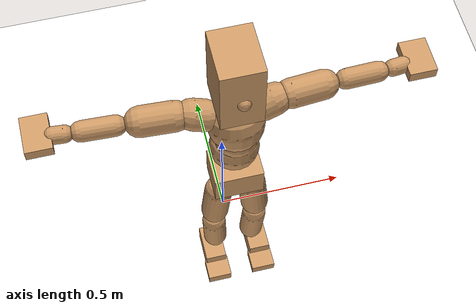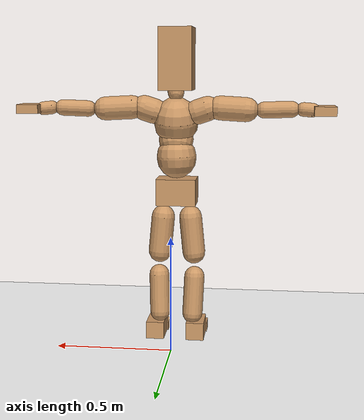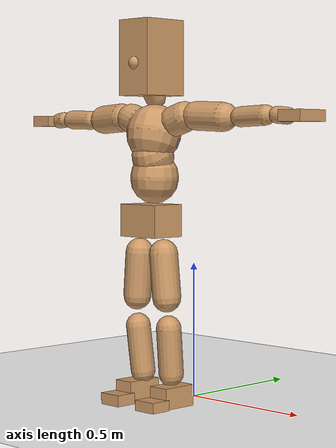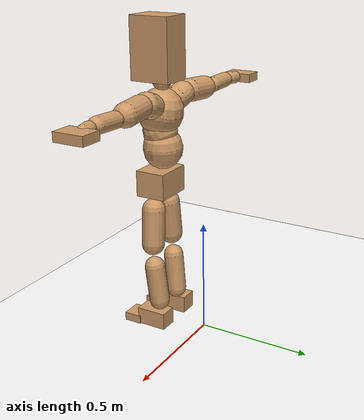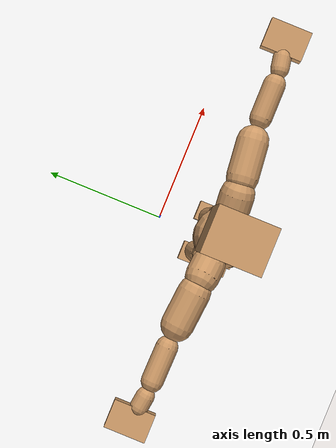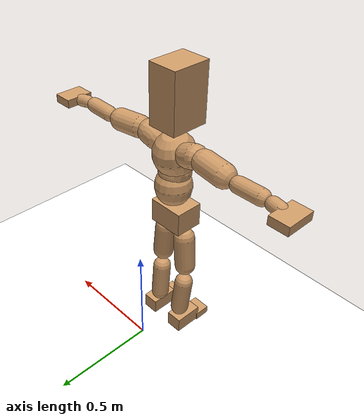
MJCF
<mujoco model="humanoid">
  <option integrator="implicitfast" />

  <visual>
    <global offwidth="1280" offheight="960" />
    <headlight active="1" ambient="0.34 0.34 0.34" diffuse="0.5 0.5 0.5" />
  </visual>

  <default>
    <joint damping="2" stiffness="2" armature="0.01" limited="true" solimplimit="0 .99 .01" />
    <geom condim="1" friction="0.7 0.005 0.0001" solimp=".99 .99 .003" solref="0.015 1" margin="0.001" rgba="0.8 0.6 .4 1" />
    <default class="smplcontact">
      <geom condim="3" friction="1. 0.005 0.0001" solref="0.015 1" solimp="0.98 0.98 0.001" priority="1" />
    </default>
    <default class="stiff_medium">
      <joint stiffness="10" />
    </default>
    <default class="stiff_medium_higher">
      <joint stiffness="50" />
    </default>
    <default class="stiff_high">
      <joint stiffness="100" />
    </default>
  </default>

  <asset>
    <texture type="skybox" builtin="gradient" rgb1="0.99 0.99 0.99" rgb2="0.608 0.828 0.892" width="100" />
    <texture builtin="flat" height="1278" mark="cross" markrgb="1 1 1" name="texgeom" random="0.01" rgb1="0.8 0.6 0.4" rgb2="0.8 0.6 0.4" type="cube" width="127" />
    <texture name="texplane" type="2d" builtin="checker" markrgb="1 1 1" rgb1="0.756 0.772 0.76" rgb2="0.6 0.6 0.6" width="100" height="100" />
    <material name="MatPlane" reflectance="0.5" texture="texplane" texrepeat="1 1" texuniform="true" />
    <material name="geom" texture="texgeom" texuniform="true" />
  </asset>

  <worldbody>
    <light name="tracking_light" pos="0 0 7" dir="0 0 -1" directional="true" cutoff="100" exponent="1" diffuse="1 1 1" specular="0.1 0.1 0.1" mode="trackcom" />
    <camera name="back" pos="0 3 2.4" xyaxes="-1 0 0 0 -1 2" mode="trackcom" />
    <camera name="side" pos="-3 0 2.4" xyaxes="0 -1 0 1 0 2" mode="trackcom" />
    <camera name="front_side" pos="-2.8 -2.8 0.8" xyaxes="0.5 -0.5 0 0.1 0.1 1" mode="trackcom" />
    <geom condim="3" name="floor" pos="0 0 0" rgba="1 1 1 1" size="100 100 .2" type="plane" material="MatPlane" />
    <body name="Pelvis" pos="-0.0018 -0.2233 0.676753" euler="90 0 0">
      <site name="Pelvis" size="0.01" />
      <freejoint name="Pelvis" />
      <geom type="box" pos="0 -0.00975135 -0.0045089" size="0.0876366 0.0581858 0.0680434" quat="1.0000 0.0000 0.0000 0.0000" density="3165.830099" name="Pelvis" />
      <body name="L_Hip" pos="0.0569761 -0.073659 -0.00557464">
        <joint name="L_Hip_x" type="hinge" pos="0 0 0" axis="1 0 0" stiffness="10" range="-160.0 22.92" class="stiff_medium" damping="15" />
        <joint name="L_Hip_y" type="hinge" pos="0 0 0" axis="0 1 0" stiffness="10" range="-70.0 70.0" class="stiff_medium" damping="10" />
        <joint name="L_Hip_z" type="hinge" pos="0 0 0" axis="0 0 1" stiffness="10" range="-28.65 90.0" class="stiff_medium" damping="10" />
        <geom type="capsule" density="2040.816327" fromto="0.00485388 -0.0526544 -0.000631959 0.0192463 -0.210761 -0.00252755" size="0.0513525" name="L_Hip" />
        <body name="L_Knee" pos="0.0241002 -0.263415 -0.00315951">
          <joint name="L_Knee_x" type="hinge" pos="0 0 0" axis="1 0 0" range="-5.16 171.89" damping="8" />
          <joint name="L_Knee_y" type="hinge" pos="0 0 0" axis="0 1 0" range="-4.58 6.88" damping="8" />
          <joint name="L_Knee_z" type="hinge" pos="0 0 0" axis="0 0 1" range="-6.88 4.58" damping="8" />
          <geom type="capsule" density="1234.567901" fromto="-0.00189136 -0.0558859 -0.0060996 -0.00764834 -0.22354 -0.0245641" size="0.044903" name="L_Knee" />
          <body name="L_Ankle" pos="-0.00953971 -0.279426 -0.0306637">
            <joint name="L_Ankle_x" type="hinge" pos="0 0 0" axis="1 0 0" range="-45.84 45.84" class="stiff_medium" damping="6" />
            <joint name="L_Ankle_y" type="hinge" pos="0 0 0" axis="0 1 0" range="-74.48 22.92" class="stiff_medium" damping="3" />
            <joint name="L_Ankle_z" type="hinge" pos="0 0 0" axis="0 0 1" range="-4.58 4.58" class="stiff_medium" damping="6" />
            <geom type="box" pos="0.0191013 -0.0195932 0.0196002" size="0.0395963 0.0380387 0.0688438" quat="1.0000 0.0000 0.0000 0.0000" density="449.071558" name="L_Ankle" class="smplcontact" />
            <body name="L_Toe" pos="0.0216427 -0.0457448 0.0966242">
              <joint name="L_Toe_x" type="hinge" pos="0 0 0" axis="1 0 0" range="-91.67 22.92" />
              <joint name="L_Toe_y" type="hinge" pos="0 0 0" axis="0 1 0" range="-4.58 4.58" />
              <joint name="L_Toe_z" type="hinge" pos="0 0 0" axis="0 0 1" range="-4.58 4.58" />
              <geom type="box" pos="-0.00282 0.00517 0.0200862" size="0.044932 0.0188 0.0401724" quat="1.0000 0.0000 0.0000 0.0000" density="423.206892" name="L_Toe" class="smplcontact" />
            </body>
          </body>
        </body>
      </body>
      <body name="R_Hip" pos="-0.0555005 -0.0729337 -0.00352514">
        <joint name="R_Hip_x" type="hinge" pos="0 0 0" axis="1 0 0" stiffness="10" range="-160.0 22.92" class="stiff_medium" damping="15" />
        <joint name="R_Hip_y" type="hinge" pos="0 0 0" axis="0 1 0" stiffness="10" range="-70.0 70.0" class="stiff_medium" damping="10" />
        <joint name="R_Hip_z" type="hinge" pos="0 0 0" axis="0 0 1" stiffness="10" range="-90.0 28.65" class="stiff_medium" damping="10" />
        <geom type="capsule" density="2040.816327" fromto="-0.00541515 -0.0537074 -0.00126824 -0.0214926 -0.214903 -0.00498921" size="0.050601" name="R_Hip" />
        <body name="R_Knee" pos="-0.0269077 -0.26861 -0.00625745">
          <joint name="R_Knee_x" type="hinge" pos="0 0 0" axis="1 0 0" range="-5.16 171.89" damping="8" />
          <joint name="R_Knee_y" type="hinge" pos="0 0 0" axis="0 1 0" range="-6.88 4.58" damping="8" />
          <joint name="R_Knee_z" type="hinge" pos="0 0 0" axis="0 0 1" range="-4.58 6.88" damping="8" />
          <geom type="capsule" density="1234.567901" fromto="0.00225494 -0.0559539 -0.00597555 0.0088544 -0.223749 -0.0237379" size="0.044903" name="R_Knee" />
          <body name="R_Ankle" pos="0.0111093 -0.279703 -0.0297135">
            <joint name="R_Ankle_x" type="hinge" pos="0 0 0" axis="1 0 0" range="-45.84 45.84" class="stiff_medium" damping="6" />
            <joint name="R_Ankle_y" type="hinge" pos="0 0 0" axis="0 1 0" range="-22.92 74.48" class="stiff_medium" damping="3" />
            <joint name="R_Ankle_z" type="hinge" pos="0 0 0" axis="0 0 1" range="-4.58 4.58" class="stiff_medium" damping="6" />
            <geom type="box" pos="-0.0173798 -0.0142645 0.0207341" size="0.0395963 0.0391864 0.0700586" quat="1.0000 0.0000 0.0000 0.0000" density="434.700981" name="R_Ankle" class="smplcontact" />
            <body name="R_Toe" pos="-0.0208229 -0.0394324 0.0998639">
              <joint name="R_Toe_x" type="hinge" pos="0 0 0" axis="1 0 0" range="-91.67 22.92" />
              <joint name="R_Toe_y" type="hinge" pos="0 0 0" axis="0 1 0" range="-4.58 4.58" />
              <joint name="R_Toe_z" type="hinge" pos="0 0 0" axis="0 0 1" range="-4.58 4.58" />
              <geom type="box" pos="0.003948 0.00423 0.0183853" size="0.045026 0.020304 0.0399294" quat="1.0000 0.0000 0.0000 0.0000" density="407.384095" name="R_Toe" class="smplcontact" />
            </body>
          </body>
        </body>
      </body>
      <body name="Torso" pos="-0.0020495 0.0878428 -0.0218887">
        <joint name="Torso_x" type="hinge" pos="0 0 0" axis="1 0 0" range="-25.78 57.3" class="stiff_medium" damping="15" />
        <joint name="Torso_y" type="hinge" pos="0 0 0" axis="0 1 0" range="-57.3 57.3" class="stiff_high" damping="20" />
        <joint name="Torso_z" type="hinge" pos="0 0 0" axis="0 0 1" range="-34.38 34.38" class="stiff_high" damping="20" />
        <geom type="capsule" density="2040.816327" fromto="0.00211351 0.0494937 0.000422701 0.00252055 0.0604839 0.00050411" size="0.086897" name="Torso" />
        <body name="Spine" pos="0.00463289 0.110059 0.000926578">
          <joint name="Spine_x" type="hinge" pos="0 0 0" axis="1 0 0" stiffness="10" range="-25.78 57.3" class="stiff_medium" damping="15" />
          <joint name="Spine_y" type="hinge" pos="0 0 0" axis="0 1 0" stiffness="10" range="-57.3 57.3" class="stiff_high" damping="8" />
          <joint name="Spine_z" type="hinge" pos="0 0 0" axis="0 0 1" stiffness="20" range="-34.38 34.38" class="stiff_high" damping="12" />
          <geom type="capsule" density="2040.816327" fromto="0.000619414 0.0193959 0.00923676 0.000700823 0.0237106 0.0113534" size="0.076255" name="Spine" />
          <body name="Chest" pos="0.00132024 0.0431065 0.0205902">
            <joint name="Chest_x" type="hinge" pos="0 0 0" axis="1 0 0" stiffness="10" range="-25.78 57.3" class="stiff_medium" damping="15" />
            <joint name="Chest_y" type="hinge" pos="0 0 0" axis="0 1 0" stiffness="10" range="-57.3 57.3" class="stiff_high" damping="8" />
            <joint name="Chest_z" type="hinge" pos="0 0 0" axis="0 0 1" stiffness="20" range="-34.38 34.38" class="stiff_high" damping="12" />
            <geom type="capsule" density="2040.816327" fromto="-0.000807147 0.0555331 -0.0140347 -0.000888556 0.0678259 -0.0172097" size="0.098196" name="Chest" />
            <body name="Neck" pos="-0.00251225 0.174628 -0.0330039">
              <joint name="Neck_x" type="hinge" pos="0 0 0" axis="1 0 0" range="-28.65 57.3" class="stiff_medium_higher" damping="10" />
              <joint name="Neck_y" type="hinge" pos="0 0 0" axis="0 1 0" range="-40.11 40.11" class="stiff_medium_higher" damping="10" />
              <joint name="Neck_z" type="hinge" pos="0 0 0" axis="0 0 1" range="-40.11 40.11" class="stiff_medium_higher" damping="10" />
              <geom type="capsule" density="1000" fromto="0.000809445 0.0105288 0.00834255 0.00332022 0.042116 0.0332883" size="0.035922" name="Neck" />
              <body name="Head" pos="0.0042121 0.0526454 0.0415489">
                <joint name="Head_x" type="hinge" pos="0 0 0" axis="1 0 0" range="-28.65 57.3" class="stiff_medium_higher" damping="2" />
                <joint name="Head_y" type="hinge" pos="0 0 0" axis="0 1 0" range="-40.11 40.11" class="stiff_medium_higher" damping="2" />
                <joint name="Head_z" type="hinge" pos="0 0 0" axis="0 0 1" range="-40.11 40.11" class="stiff_medium_higher" damping="2" />
                <geom type="box" pos="-0.00497868 0.102071 -0.0137506" size="0.0718352 0.134463 0.0900904" quat="1.0000 0.0000 0.0000 0.0000" density="1018.069894" name="Head" />
                <geom type="capsule" name="nose" size="0.023708 0.011854" pos="0 0.0815635 0.05927" quat="1 0 0 0" mass="0" contype="0" conaffinity="0" />
              </body>
            </body>
            <body name="L_Thorax" pos="0.0773579 0.0990496 -0.0281966">
              <joint name="L_Thorax_x" type="hinge" pos="0 0 0" axis="1 0 0" range="-10.89 4.58" class="stiff_medium_higher" damping="20" />
              <joint name="L_Thorax_y" type="hinge" pos="0 0 0" axis="0 1 0" range="-28.65 17.19" class="stiff_medium_higher" damping="20" />
              <joint name="L_Thorax_z" type="hinge" pos="0 0 0" axis="0 0 1" range="-31.51 40.11" class="stiff_medium_higher" damping="20" />
              <geom type="capsule" density="1000" fromto="0.0145175 0.00486574 -0.00144437 0.0580721 0.0194637 -0.0056722" size="0.0549655" name="L_Thorax" />
              <body name="L_Shoulder" pos="0.0725896 0.0243295 -0.00711657">
                <joint name="L_Shoulder_x" type="hinge" pos="0 0 0" axis="1 0 0" range="-97.4 97.4" class="stiff_medium" damping="6" />
                <joint name="L_Shoulder_y" type="hinge" pos="0 0 0" axis="0 1 0" range="-108.86 80.21" class="stiff_medium" damping="6" />
                <joint name="L_Shoulder_z" type="hinge" pos="0 0 0" axis="0 0 1" range="-97.4 85.94" class="stiff_medium" damping="6" />
                <geom type="capsule" density="1000" fromto="0.038737 -0.00195722 -0.00410594 0.155025 -0.00762982 -0.0164215" size="0.051183" name="L_Shoulder" />
                <body name="L_Elbow" pos="0.193762 -0.00958704 -0.0205274">
                  <joint name="L_Elbow_x" type="hinge" pos="0 0 0" axis="1 0 0" range="-17.19 4.58" damping="5" />
                  <joint name="L_Elbow_y" type="hinge" pos="0 0 0" axis="0 1 0" range="-180.0 17.19" damping="5" />
                  <joint name="L_Elbow_z" type="hinge" pos="0 0 0" axis="0 0 1" range="-100.84 4.58" damping="5" />
                  <geom type="capsule" density="1000" fromto="0.0371705 0.0013438 -0.000145363 0.148831 0.00537433 -0.000667839" size="0.0350325" name="L_Elbow" />
                  <body name="L_Wrist" pos="0.186002 0.00671812 -0.000899701">
                    <joint name="L_Wrist_x" type="hinge" pos="0 0 0" axis="1 0 0" range="-180.0 22.92" />
                    <joint name="L_Wrist_y" type="hinge" pos="0 0 0" axis="0 1 0" range="-17.19 17.19" />
                    <joint name="L_Wrist_z" type="hinge" pos="0 0 0" axis="0 0 1" range="-22.92 22.92" />
                    <geom type="capsule" density="1000" fromto="0.01254 -0.00118866 -0.00223928 0.0501583 -0.004846 -0.00895683" size="0.029097" name="L_Wrist" class="smplcontact" />
                    <body name="L_Hand" pos="0.0626995 -0.00612629 -0.0111048">
                      <joint name="L_Hand_x" type="hinge" pos="0 0 0" axis="1 0 0" range="-17.19 17.19" />
                      <joint name="L_Hand_y" type="hinge" pos="0 0 0" axis="0 1 0" range="-51.57 51.57" />
                      <joint name="L_Hand_z" type="hinge" pos="0 0 0" axis="0 0 1" range="-91.67 91.67" />
                      <geom type="box" pos="0.0397307 0.00123 -0.007134" size="0.047145 0.019434 0.066174" quat="1.0000 0.0000 0.0000 0.0000" density="400.552564" name="L_Hand" class="smplcontact" />
                    </body>
                  </body>
                </body>
              </body>
            </body>
            <body name="R_Thorax" pos="-0.0800308 0.0963125 -0.0326336">
              <joint name="R_Thorax_x" type="hinge" pos="0 0 0" axis="1 0 0" range="-10.89 4.58" class="stiff_medium_higher" damping="20" />
              <joint name="R_Thorax_y" type="hinge" pos="0 0 0" axis="0 1 0" range="-17.19 28.65" class="stiff_medium_higher" damping="20" />
              <joint name="R_Thorax_z" type="hinge" pos="0 0 0" axis="0 0 1" range="-40.11 31.51" class="stiff_medium_higher" damping="20" />
              <geom type="capsule" density="1000" fromto="-0.0153166 0.00518532 -0.00142736 -0.0612644 0.0207405 -0.00581473" size="0.0539105" name="R_Thorax" />
              <body name="R_Shoulder" pos="-0.0765733 0.0260287 -0.00724135">
                <joint name="R_Shoulder_x" type="hinge" pos="0 0 0" axis="1 0 0" range="-97.4 97.4" class="stiff_medium" damping="6" />
                <joint name="R_Shoulder_y" type="hinge" pos="0 0 0" axis="0 1 0" range="-80.21 108.86" class="stiff_medium" damping="6" />
                <joint name="R_Shoulder_z" type="hinge" pos="0 0 0" axis="0 0 1" range="-85.94 97.4" class="stiff_medium" damping="6" />
                <geom type="capsule" density="1000" fromto="-0.037841 -0.00202417 -0.00321888 -0.151517 -0.00799533 -0.0127727" size="0.052569" name="R_Shoulder" />
                <body name="R_Elbow" pos="-0.189359 -0.00992057 -0.0159917">
                  <joint name="R_Elbow_x" type="hinge" pos="0 0 0" axis="1 0 0" range="-17.19 4.58" damping="5" />
                  <joint name="R_Elbow_y" type="hinge" pos="0 0 0" axis="0 1 0" range="-17.19 180.0" damping="5" />
                  <joint name="R_Elbow_z" type="hinge" pos="0 0 0" axis="0 0 1" range="-4.58 100.84" damping="5" />
                  <geom type="capsule" density="1000" fromto="-0.0381406 0.00120189 -0.000820859 -0.152414 0.00463531 -0.00328396" size="0.035292" name="R_Elbow" />
                  <body name="R_Wrist" pos="-0.190554 0.0058372 -0.00419132">
                    <joint name="R_Wrist_x" type="hinge" pos="0 0 0" axis="1 0 0" range="-180.0 22.92" />
                    <joint name="R_Wrist_y" type="hinge" pos="0 0 0" axis="0 1 0" range="-17.19 17.19" />
                    <joint name="R_Wrist_z" type="hinge" pos="0 0 0" axis="0 0 1" range="-22.92 22.92" />
                    <geom type="capsule" density="1000" fromto="-0.0126137 -0.000890435 -0.00157369 -0.0505306 -0.0036521 -0.00620134" size="0.029829" name="R_Wrist" class="smplcontact" />
                    <body name="R_Hand" pos="-0.0631463 -0.00454268 -0.00768377">
                      <joint name="R_Hand_x" type="hinge" pos="0 0 0" axis="1 0 0" range="-17.19 17.19" />
                      <joint name="R_Hand_y" type="hinge" pos="0 0 0" axis="0 1 0" range="-51.57 51.57" />
                      <joint name="R_Hand_z" type="hinge" pos="0 0 0" axis="0 0 1" range="-91.67 91.67" />
                      <geom type="box" pos="-0.0372324 -0.001107 -0.009717" size="0.0458555 0.020172 0.067158" quat="1.0000 0.0000 0.0000 0.0000" density="403.679611" name="R_Hand" class="smplcontact" />
                    </body>
                  </body>
                </body>
              </body>
            </body>
          </body>
        </body>
      </body>
    </body>
  </worldbody>
  <actuator>
    <general name="L_Hip_x" joint="L_Hip_x" biastype="affine" gainprm="287.33006409732246" biasprm="-215.3247604770444 -180 -2.0" ctrllimited="true" ctrlrange="-1 1" forcerange="-360 360" />
    <general name="L_Hip_y" joint="L_Hip_y" biastype="affine" gainprm="219.9114857512855" biasprm="0.0 -180 -2.0" ctrllimited="true" ctrlrange="-1 1" forcerange="-360 360" />
    <general name="L_Hip_z" joint="L_Hip_z" biastype="affine" gainprm="186.3749841742145" biasprm="96.3683546488669 -180 -2.0" ctrllimited="true" ctrlrange="-1 1" forcerange="-360 360" />
    <general name="L_Knee_x" joint="L_Knee_x" biastype="affine" gainprm="278.10948965903646" biasprm="261.8988715665131 -180 -2.0" ctrllimited="true" ctrlrange="-1 1" forcerange="-360 360" />
    <general name="L_Knee_y" joint="L_Knee_y" biastype="affine" gainprm="18.001325905069514" biasprm="3.612831551628262 -180 -2.0" ctrllimited="true" ctrlrange="-1 1" forcerange="-360 360" />
    <general name="L_Knee_z" joint="L_Knee_z" biastype="affine" gainprm="18.001325905069514" biasprm="-3.612831551628262 -180 -2.0" ctrllimited="true" ctrlrange="-1 1" forcerange="-360 360" />
    <general name="L_Ankle_x" joint="L_Ankle_x" biastype="affine" gainprm="72.00530362027807" biasprm="0.0 -90 -2.0" ctrllimited="true" ctrlrange="-1 1" forcerange="-180 180" />
    <general name="L_Ankle_y" joint="L_Ankle_y" biastype="affine" gainprm="76.49778111491148" biasprm="-40.49512930477244 -90 -2.0" ctrllimited="true" ctrlrange="-1 1" forcerange="-180 180" />
    <general name="L_Ankle_z" joint="L_Ankle_z" biastype="affine" gainprm="7.1942471767206255" biasprm="0.0 -90 -2.0" ctrllimited="true" ctrlrange="-1 1" forcerange="-180 180" />
    <general name="L_Toe_x" joint="L_Toe_x" biastype="affine" gainprm="71.99902043497087" biasprm="-43.19689898685965 -72 -0.8" ctrllimited="true" ctrlrange="-1 1" forcerange="-144 144" />
    <general name="L_Toe_y" joint="L_Toe_y" biastype="affine" gainprm="5.755397741376501" biasprm="0.0 -72 -0.8" ctrllimited="true" ctrlrange="-1 1" forcerange="-144 144" />
    <general name="L_Toe_z" joint="L_Toe_z" biastype="affine" gainprm="5.755397741376501" biasprm="0.0 -72 -0.8" ctrllimited="true" ctrlrange="-1 1" forcerange="-144 144" />
    <general name="R_Hip_x" joint="R_Hip_x" biastype="affine" gainprm="287.33006409732246" biasprm="-215.3247604770444 -180 -2.0" ctrllimited="true" ctrlrange="-1 1" forcerange="-360 360" />
    <general name="R_Hip_y" joint="R_Hip_y" biastype="affine" gainprm="219.9114857512855" biasprm="0.0 -180 -2.0" ctrllimited="true" ctrlrange="-1 1" forcerange="-360 360" />
    <general name="R_Hip_z" joint="R_Hip_z" biastype="affine" gainprm="186.3749841742145" biasprm="-96.3683546488669 -180 -2.0" ctrllimited="true" ctrlrange="-1 1" forcerange="-360 360" />
    <general name="R_Knee_x" joint="R_Knee_x" biastype="affine" gainprm="278.10948965903646" biasprm="261.8988715665131 -180 -2.0" ctrllimited="true" ctrlrange="-1 1" forcerange="-360 360" />
    <general name="R_Knee_y" joint="R_Knee_y" biastype="affine" gainprm="18.001325905069514" biasprm="-3.612831551628262 -180 -2.0" ctrllimited="true" ctrlrange="-1 1" forcerange="-360 360" />
    <general name="R_Knee_z" joint="R_Knee_z" biastype="affine" gainprm="18.001325905069514" biasprm="3.612831551628262 -180 -2.0" ctrllimited="true" ctrlrange="-1 1" forcerange="-360 360" />
    <general name="R_Ankle_x" joint="R_Ankle_x" biastype="affine" gainprm="72.00530362027807" biasprm="0.0 -90 -2.0" ctrllimited="true" ctrlrange="-1 1" forcerange="-180 180" />
    <general name="R_Ankle_y" joint="R_Ankle_y" biastype="affine" gainprm="76.49778111491148" biasprm="40.49512930477244 -90 -2.0" ctrllimited="true" ctrlrange="-1 1" forcerange="-180 180" />
    <general name="R_Ankle_z" joint="R_Ankle_z" biastype="affine" gainprm="7.1942471767206255" biasprm="0.0 -90 -2.0" ctrllimited="true" ctrlrange="-1 1" forcerange="-180 180" />
    <general name="R_Toe_x" joint="R_Toe_x" biastype="affine" gainprm="71.99902043497087" biasprm="-43.19689898685965 -72 -0.8" ctrllimited="true" ctrlrange="-1 1" forcerange="-144 144" />
    <general name="R_Toe_y" joint="R_Toe_y" biastype="affine" gainprm="5.755397741376501" biasprm="0.0 -72 -0.8" ctrllimited="true" ctrlrange="-1 1" forcerange="-144 144" />
    <general name="R_Toe_z" joint="R_Toe_z" biastype="affine" gainprm="5.755397741376501" biasprm="0.0 -72 -0.8" ctrllimited="true" ctrlrange="-1 1" forcerange="-144 144" />
    <general name="Torso_x" joint="Torso_x" biastype="affine" gainprm="174.00234510682668" biasprm="66.0153336274335 -240 -4.0" ctrllimited="true" ctrlrange="-1 1" forcerange="-360 360" />
    <general name="Torso_y" joint="Torso_y" biastype="affine" gainprm="240.0176787342602" biasprm="0.0 -240 -4.0" ctrllimited="true" ctrlrange="-1 1" forcerange="-360 360" />
    <general name="Torso_z" joint="Torso_z" biastype="affine" gainprm="144.01060724055614" biasprm="0.0 -240 -4.0" ctrllimited="true" ctrlrange="-1 1" forcerange="-360 360" />
    <general name="Spine_x" joint="Spine_x" biastype="affine" gainprm="174.00234510682668" biasprm="66.0153336274335 -240 -4.0" ctrllimited="true" ctrlrange="-1 1" forcerange="-360 360" />
    <general name="Spine_y" joint="Spine_y" biastype="affine" gainprm="240.0176787342602" biasprm="0.0 -240 -4.0" ctrllimited="true" ctrlrange="-1 1" forcerange="-360 360" />
    <general name="Spine_z" joint="Spine_z" biastype="affine" gainprm="144.01060724055614" biasprm="0.0 -240 -4.0" ctrllimited="true" ctrlrange="-1 1" forcerange="-360 360" />
    <general name="Chest_x" joint="Chest_x" biastype="affine" gainprm="174.00234510682668" biasprm="66.0153336274335 -240 -4.0" ctrllimited="true" ctrlrange="-1 1" forcerange="-360 360" />
    <general name="Chest_y" joint="Chest_y" biastype="affine" gainprm="240.0176787342602" biasprm="0.0 -240 -4.0" ctrllimited="true" ctrlrange="-1 1" forcerange="-360 360" />
    <general name="Chest_z" joint="Chest_z" biastype="affine" gainprm="144.01060724055614" biasprm="0.0 -240 -4.0" ctrllimited="true" ctrlrange="-1 1" forcerange="-360 360" />
    <general name="Neck_x" joint="Neck_x" biastype="affine" gainprm="27.00198885760427" biasprm="9.000662952534757 -36 -0.8" ctrllimited="true" ctrlrange="-1 1" forcerange="-72 72" />
    <general name="Neck_y" joint="Neck_y" biastype="affine" gainprm="25.20185626709732" biasprm="0.0 -36 -0.8" ctrllimited="true" ctrlrange="-1 1" forcerange="-72 72" />
    <general name="Neck_z" joint="Neck_z" biastype="affine" gainprm="25.20185626709732" biasprm="0.0 -36 -0.8" ctrllimited="true" ctrlrange="-1 1" forcerange="-72 72" />
    <general name="Head_x" joint="Head_x" biastype="affine" gainprm="18.001325905069514" biasprm="6.000441968356505 -24 -0.8" ctrllimited="true" ctrlrange="-1 1" forcerange="-48 48" />
    <general name="Head_y" joint="Head_y" biastype="affine" gainprm="16.801237511398213" biasprm="0.0 -24 -0.8" ctrllimited="true" ctrlrange="-1 1" forcerange="-48 48" />
    <general name="Head_z" joint="Head_z" biastype="affine" gainprm="16.801237511398213" biasprm="0.0 -24 -0.8" ctrllimited="true" ctrlrange="-1 1" forcerange="-48 48" />
    <general name="L_Thorax_x" joint="L_Thorax_x" biastype="affine" gainprm="16.200146117011364" biasprm="-6.6078165480505335 -120 -1.6" ctrllimited="true" ctrlrange="-1 1" forcerange="-240 240" />
    <general name="L_Thorax_y" joint="L_Thorax_y" biastype="affine" gainprm="48.00353574685204" biasprm="-12.00088393671301 -120 -1.6" ctrllimited="true" ctrlrange="-1 1" forcerange="-240 240" />
    <general name="L_Thorax_z" joint="L_Thorax_z" biastype="affine" gainprm="75.00028861670033" biasprm="9.00589894029074 -120 -1.6" ctrllimited="true" ctrlrange="-1 1" forcerange="-240 240" />
    <general name="L_Shoulder_x" joint="L_Shoulder_x" biastype="affine" gainprm="81.5976331892389" biasprm="0.0 -48 -1.6" ctrllimited="true" ctrlrange="-1 1" forcerange="-96 96" />
    <general name="L_Shoulder_y" joint="L_Shoulder_y" biastype="affine" gainprm="79.19745640189629" biasprm="-12.00088393671301 -48 -1.6" ctrllimited="true" ctrlrange="-1 1" forcerange="-96 96" />
    <general name="L_Shoulder_z" joint="L_Shoulder_z" biastype="affine" gainprm="76.79727961455369" biasprm="-4.800353574685214 -48 -1.6" ctrllimited="true" ctrlrange="-1 1" forcerange="-96 96" />
    <general name="L_Elbow_x" joint="L_Elbow_x" biastype="affine" gainprm="13.67849441372996" biasprm="-7.923096672353461 -72 -0.8" ctrllimited="true" ctrlrange="-1 1" forcerange="-144 144" />
    <general name="L_Elbow_y" joint="L_Elbow_y" biastype="affine" gainprm="123.89813107227425" biasprm="-102.29653998619085 -72 -0.8" ctrllimited="true" ctrlrange="-1 1" forcerange="-144 144" />
    <general name="L_Elbow_z" joint="L_Elbow_z" biastype="affine" gainprm="66.23733950828719" biasprm="-60.4819417669107 -72 -0.8" ctrllimited="true" ctrlrange="-1 1" forcerange="-144 144" />
    <general name="L_Wrist_x" joint="L_Wrist_x" biastype="affine" gainprm="21.24973270888136" biasprm="-16.449379134196157 -12 -0.8" ctrllimited="true" ctrlrange="-1 1" forcerange="-24 24" />
    <general name="L_Wrist_y" joint="L_Wrist_y" biastype="affine" gainprm="3.6002651810139037" biasprm="0.0 -12 -0.8" ctrllimited="true" ctrlrange="-1 1" forcerange="-24 24" />
    <general name="L_Wrist_z" joint="L_Wrist_z" biastype="affine" gainprm="4.800353574685205" biasprm="0.0 -12 -0.8" ctrllimited="true" ctrlrange="-1 1" forcerange="-24 24" />
    <general name="L_Hand_x" joint="L_Hand_x" biastype="affine" gainprm="3.6002651810139037" biasprm="0.0 -12 -0.8" ctrllimited="true" ctrlrange="-1 1" forcerange="-24 24" />
    <general name="L_Hand_y" joint="L_Hand_y" biastype="affine" gainprm="10.800795543041708" biasprm="0.0 -12 -0.8" ctrllimited="true" ctrlrange="-1 1" forcerange="-24 24" />
    <general name="L_Hand_z" joint="L_Hand_z" biastype="affine" gainprm="19.199319903638422" biasprm="0.0 -12 -0.8" ctrllimited="true" ctrlrange="-1 1" forcerange="-24 24" />
    <general name="R_Thorax_x" joint="R_Thorax_x" biastype="affine" gainprm="16.200146117011364" biasprm="-6.6078165480505335 -120 -1.6" ctrllimited="true" ctrlrange="-1 1" forcerange="-240 240" />
    <general name="R_Thorax_y" joint="R_Thorax_y" biastype="affine" gainprm="48.00353574685204" biasprm="12.000883936713002 -120 -1.6" ctrllimited="true" ctrlrange="-1 1" forcerange="-240 240" />
    <general name="R_Thorax_z" joint="R_Thorax_z" biastype="affine" gainprm="75.00028861670033" biasprm="-9.00589894029074 -120 -1.6" ctrllimited="true" ctrlrange="-1 1" forcerange="-240 240" />
    <general name="R_Shoulder_x" joint="R_Shoulder_x" biastype="affine" gainprm="81.5976331892389" biasprm="0.0 -48 -1.6" ctrllimited="true" ctrlrange="-1 1" forcerange="-96 96" />
    <general name="R_Shoulder_y" joint="R_Shoulder_y" biastype="affine" gainprm="79.19745640189629" biasprm="12.00088393671301 -48 -1.6" ctrllimited="true" ctrlrange="-1 1" forcerange="-96 96" />
    <general name="R_Shoulder_z" joint="R_Shoulder_z" biastype="affine" gainprm="76.79727961455369" biasprm="4.800353574685204 -48 -1.6" ctrllimited="true" ctrlrange="-1 1" forcerange="-96 96" />
    <general name="R_Elbow_x" joint="R_Elbow_x" biastype="affine" gainprm="13.67849441372996" biasprm="-7.923096672353461 -72 -0.8" ctrllimited="true" ctrlrange="-1 1" forcerange="-144 144" />
    <general name="R_Elbow_y" joint="R_Elbow_y" biastype="affine" gainprm="123.89813107227425" biasprm="102.29653998619085 -72 -0.8" ctrllimited="true" ctrlrange="-1 1" forcerange="-144 144" />
    <general name="R_Elbow_z" joint="R_Elbow_z" biastype="affine" gainprm="66.23733950828719" biasprm="60.481941766910694 -72 -0.8" ctrllimited="true" ctrlrange="-1 1" forcerange="-144 144" />
    <general name="R_Wrist_x" joint="R_Wrist_x" biastype="affine" gainprm="21.24973270888136" biasprm="-16.449379134196157 -12 -0.8" ctrllimited="true" ctrlrange="-1 1" forcerange="-24 24" />
    <general name="R_Wrist_y" joint="R_Wrist_y" biastype="affine" gainprm="3.6002651810139037" biasprm="0.0 -12 -0.8" ctrllimited="true" ctrlrange="-1 1" forcerange="-24 24" />
    <general name="R_Wrist_z" joint="R_Wrist_z" biastype="affine" gainprm="4.800353574685205" biasprm="0.0 -12 -0.8" ctrllimited="true" ctrlrange="-1 1" forcerange="-24 24" />
    <general name="R_Hand_x" joint="R_Hand_x" biastype="affine" gainprm="3.6002651810139037" biasprm="0.0 -12 -0.8" ctrllimited="true" ctrlrange="-1 1" forcerange="-24 24" />
    <general name="R_Hand_y" joint="R_Hand_y" biastype="affine" gainprm="10.800795543041708" biasprm="0.0 -12 -0.8" ctrllimited="true" ctrlrange="-1 1" forcerange="-24 24" />
    <general name="R_Hand_z" joint="R_Hand_z" biastype="affine" gainprm="19.199319903638422" biasprm="0.0 -12 -0.8" ctrllimited="true" ctrlrange="-1 1" forcerange="-24 24" />
  </actuator>
  <contact>
    <exclude body1="Torso" body2="Chest" />
    <exclude body1="Head" body2="Chest" />
    <exclude body1="R_Knee" body2="R_Toe" />
    <exclude body1="R_Knee" body2="L_Ankle" />
    <exclude body1="R_Knee" body2="L_Toe" />
    <exclude body1="L_Knee" body2="L_Toe" />
    <exclude body1="L_Knee" body2="R_Ankle" />
    <exclude body1="L_Knee" body2="R_Toe" />
    <exclude body1="L_Shoulder" body2="Chest" />
    <exclude body1="R_Shoulder" body2="Chest" />
  </contact>
  <sensor>
    <framelinvel name="sensor_Pelvis_framelinvel" objtype="xbody" objname="Pelvis" />
    <framelinvel name="sensor_L_Hip_framelinvel" objtype="xbody" objname="L_Hip" />
    <framelinvel name="sensor_L_Knee_framelinvel" objtype="xbody" objname="L_Knee" />
    <framelinvel name="sensor_L_Ankle_framelinvel" objtype="xbody" objname="L_Ankle" />
    <framelinvel name="sensor_L_Toe_framelinvel" objtype="xbody" objname="L_Toe" />
    <framelinvel name="sensor_R_Hip_framelinvel" objtype="xbody" objname="R_Hip" />
    <framelinvel name="sensor_R_Knee_framelinvel" objtype="xbody" objname="R_Knee" />
    <framelinvel name="sensor_R_Ankle_framelinvel" objtype="xbody" objname="R_Ankle" />
    <framelinvel name="sensor_R_Toe_framelinvel" objtype="xbody" objname="R_Toe" />
    <framelinvel name="sensor_Torso_framelinvel" objtype="xbody" objname="Torso" />
    <framelinvel name="sensor_Spine_framelinvel" objtype="xbody" objname="Spine" />
    <framelinvel name="sensor_Chest_framelinvel" objtype="xbody" objname="Chest" />
    <framelinvel name="sensor_Neck_framelinvel" objtype="xbody" objname="Neck" />
    <framelinvel name="sensor_Head_framelinvel" objtype="xbody" objname="Head" />
    <framelinvel name="sensor_L_Thorax_framelinvel" objtype="xbody" objname="L_Thorax" />
    <framelinvel name="sensor_L_Shoulder_framelinvel" objtype="xbody" objname="L_Shoulder" />
    <framelinvel name="sensor_L_Elbow_framelinvel" objtype="xbody" objname="L_Elbow" />
    <framelinvel name="sensor_L_Wrist_framelinvel" objtype="xbody" objname="L_Wrist" />
    <framelinvel name="sensor_L_Hand_framelinvel" objtype="xbody" objname="L_Hand" />
    <framelinvel name="sensor_R_Thorax_framelinvel" objtype="xbody" objname="R_Thorax" />
    <framelinvel name="sensor_R_Shoulder_framelinvel" objtype="xbody" objname="R_Shoulder" />
    <framelinvel name="sensor_R_Elbow_framelinvel" objtype="xbody" objname="R_Elbow" />
    <framelinvel name="sensor_R_Wrist_framelinvel" objtype="xbody" objname="R_Wrist" />
    <framelinvel name="sensor_R_Hand_framelinvel" objtype="xbody" objname="R_Hand" />
    <frameangvel name="sensor_Pelvis_frameangvel" objtype="xbody" objname="Pelvis" />
    <frameangvel name="sensor_L_Hip_frameangvel" objtype="xbody" objname="L_Hip" />
    <frameangvel name="sensor_L_Knee_frameangvel" objtype="xbody" objname="L_Knee" />
    <frameangvel name="sensor_L_Ankle_frameangvel" objtype="xbody" objname="L_Ankle" />
    <frameangvel name="sensor_L_Toe_frameangvel" objtype="xbody" objname="L_Toe" />
    <frameangvel name="sensor_R_Hip_frameangvel" objtype="xbody" objname="R_Hip" />
    <frameangvel name="sensor_R_Knee_frameangvel" objtype="xbody" objname="R_Knee" />
    <frameangvel name="sensor_R_Ankle_frameangvel" objtype="xbody" objname="R_Ankle" />
    <frameangvel name="sensor_R_Toe_frameangvel" objtype="xbody" objname="R_Toe" />
    <frameangvel name="sensor_Torso_frameangvel" objtype="xbody" objname="Torso" />
    <frameangvel name="sensor_Spine_frameangvel" objtype="xbody" objname="Spine" />
    <frameangvel name="sensor_Chest_frameangvel" objtype="xbody" objname="Chest" />
    <frameangvel name="sensor_Neck_frameangvel" objtype="xbody" objname="Neck" />
    <frameangvel name="sensor_Head_frameangvel" objtype="xbody" objname="Head" />
    <frameangvel name="sensor_L_Thorax_frameangvel" objtype="xbody" objname="L_Thorax" />
    <frameangvel name="sensor_L_Shoulder_frameangvel" objtype="xbody" objname="L_Shoulder" />
    <frameangvel name="sensor_L_Elbow_frameangvel" objtype="xbody" objname="L_Elbow" />
    <frameangvel name="sensor_L_Wrist_frameangvel" objtype="xbody" objname="L_Wrist" />
    <frameangvel name="sensor_L_Hand_frameangvel" objtype="xbody" objname="L_Hand" />
    <frameangvel name="sensor_R_Thorax_frameangvel" objtype="xbody" objname="R_Thorax" />
    <frameangvel name="sensor_R_Shoulder_frameangvel" objtype="xbody" objname="R_Shoulder" />
    <frameangvel name="sensor_R_Elbow_frameangvel" objtype="xbody" objname="R_Elbow" />
    <frameangvel name="sensor_R_Wrist_frameangvel" objtype="xbody" objname="R_Wrist" />
    <frameangvel name="sensor_R_Hand_frameangvel" objtype="xbody" objname="R_Hand" />
    <subtreelinvel name="Chest_subtreelinvel" body="Chest" />
    <gyro name="Pelvis_gyro" site="Pelvis" />
  </sensor>
</mujoco>
